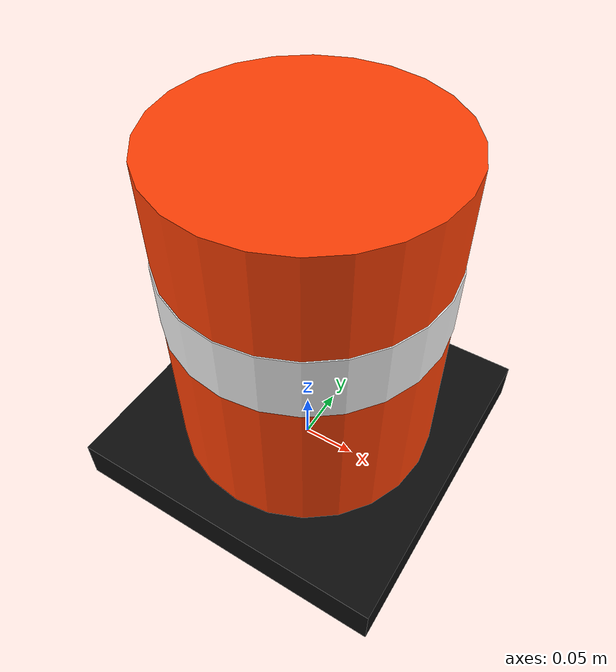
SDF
<?xml version="1.0"?>
<sdf version="1.9">
  <model name="track_cone">
    <static>true</static>

    <link name="cone_link">
      <collision name="base_collision">
        <pose>0 0 0.02 0 0 0</pose>
        <geometry>
          <box>
            <size>0.30 0.30 0.04</size>
          </box>
        </geometry>
      </collision>

      <collision name="body_collision">
        <pose>0 0 0.18 0 0 0</pose>
        <geometry>
          <cylinder>
            <radius>0.12</radius>
            <length>0.32</length>
          </cylinder>
        </geometry>
      </collision>

      <visual name="base_visual">
        <pose>0 0 0.02 0 0 0</pose>
        <geometry>
          <box>
            <size>0.30 0.30 0.04</size>
          </box>
        </geometry>
        <material>
          <ambient>0.05 0.05 0.05 1</ambient>
          <diffuse>0.05 0.05 0.05 1</diffuse>
        </material>
      </visual>

      <visual name="body_visual">
        <pose>0 0 0.18 0 0 0</pose>
        <geometry>
          <cylinder>
            <radius>0.12</radius>
            <length>0.32</length>
          </cylinder>
        </geometry>
        <material>
          <ambient>1.0 0.25 0.02 1</ambient>
          <diffuse>1.0 0.25 0.02 1</diffuse>
        </material>
      </visual>

      <visual name="white_band_visual">
        <pose>0 0 0.22 0 0 0</pose>
        <geometry>
          <cylinder>
            <radius>0.121</radius>
            <length>0.06</length>
          </cylinder>
        </geometry>
        <material>
          <ambient>0.95 0.95 0.95 1</ambient>
          <diffuse>0.95 0.95 0.95 1</diffuse>
        </material>
      </visual>
    </link>
  </model>
</sdf>
